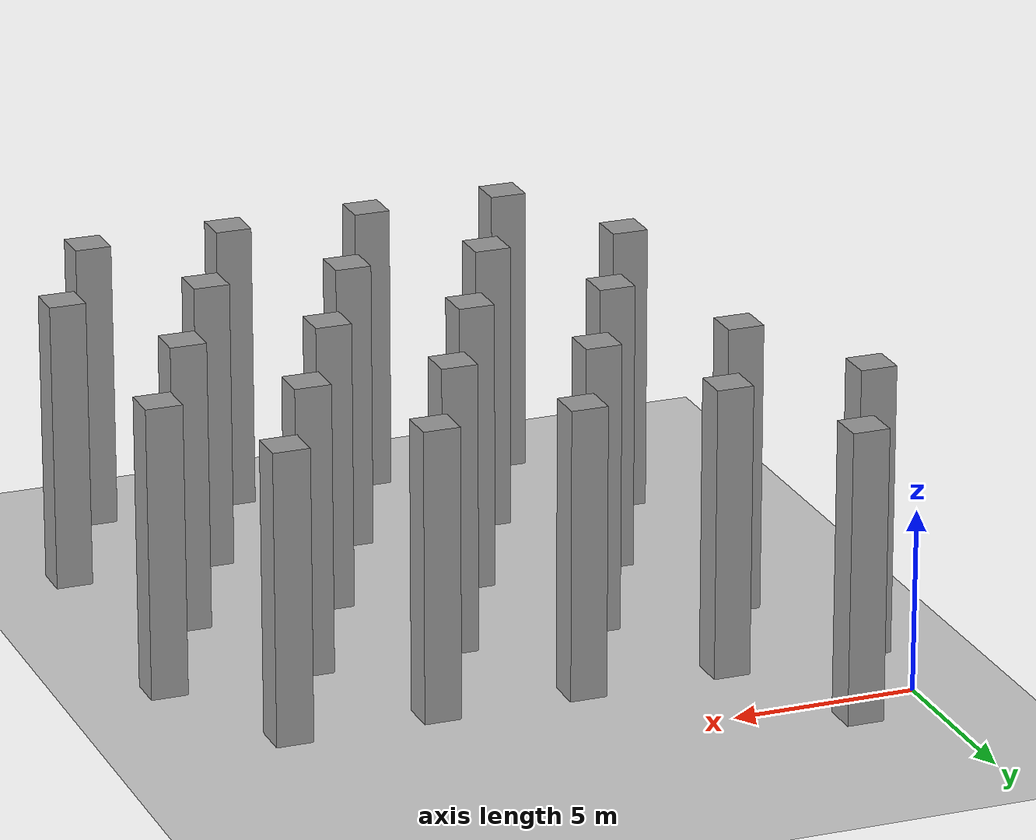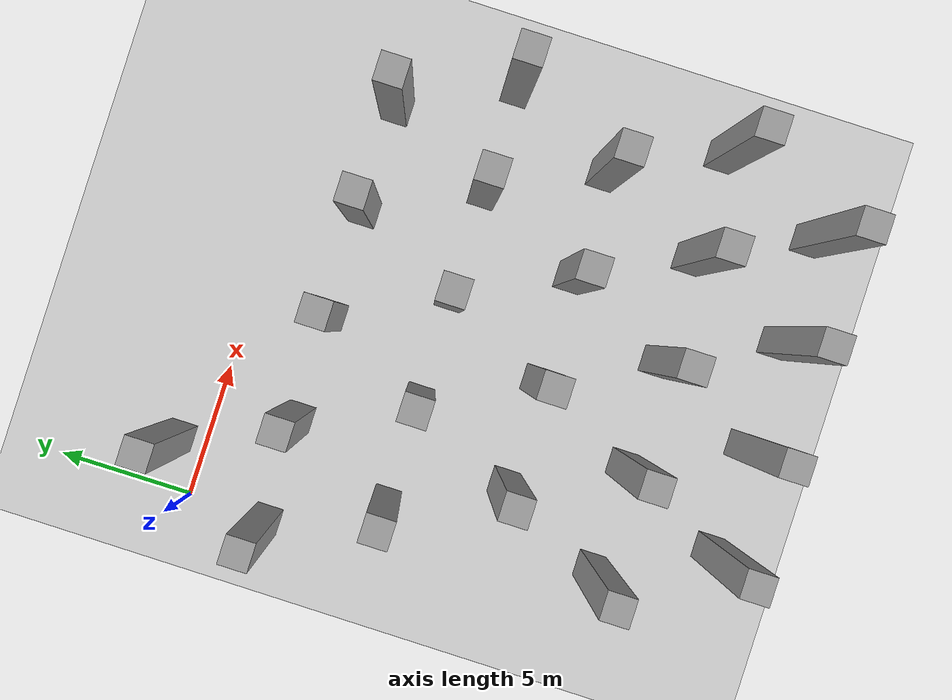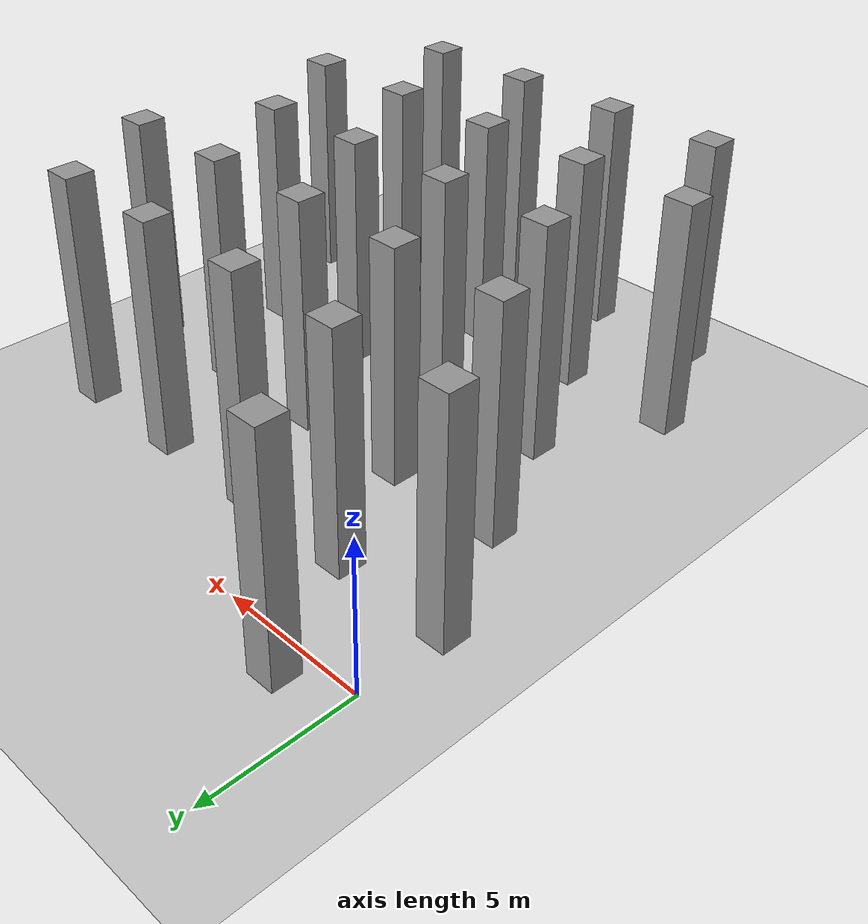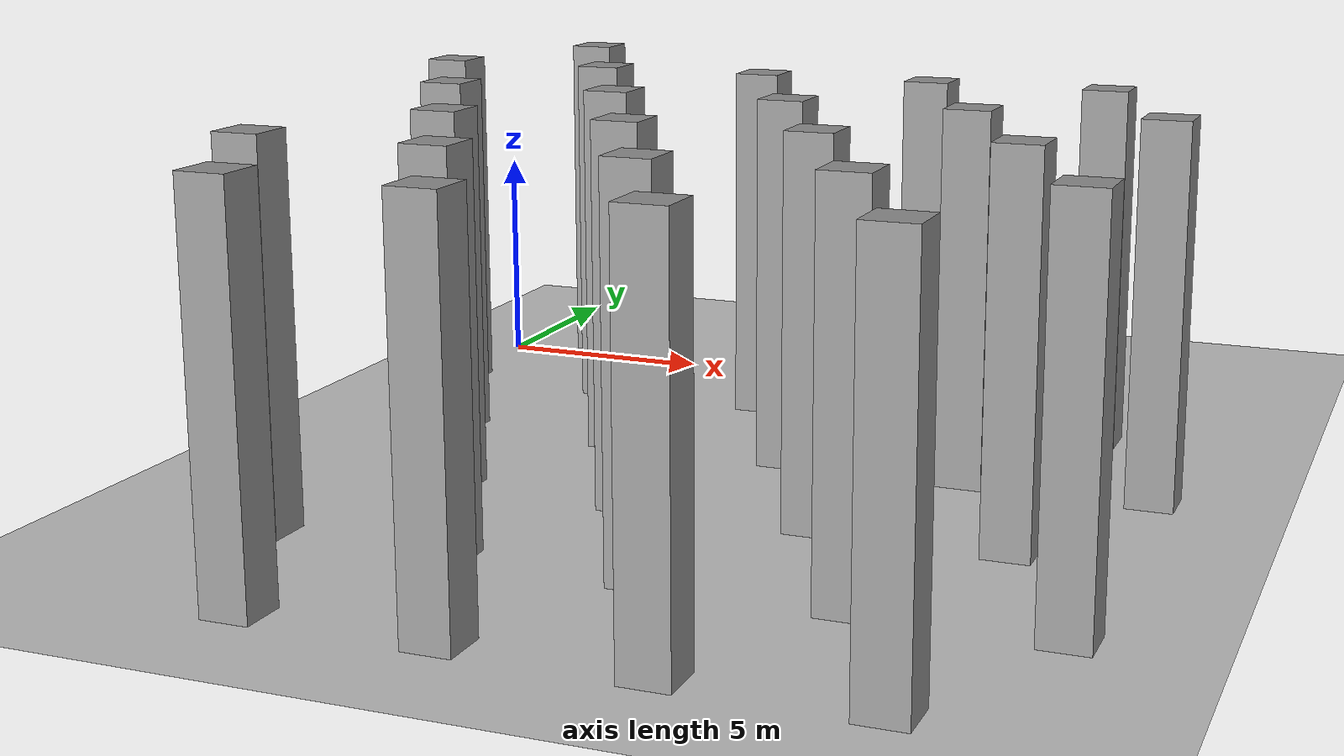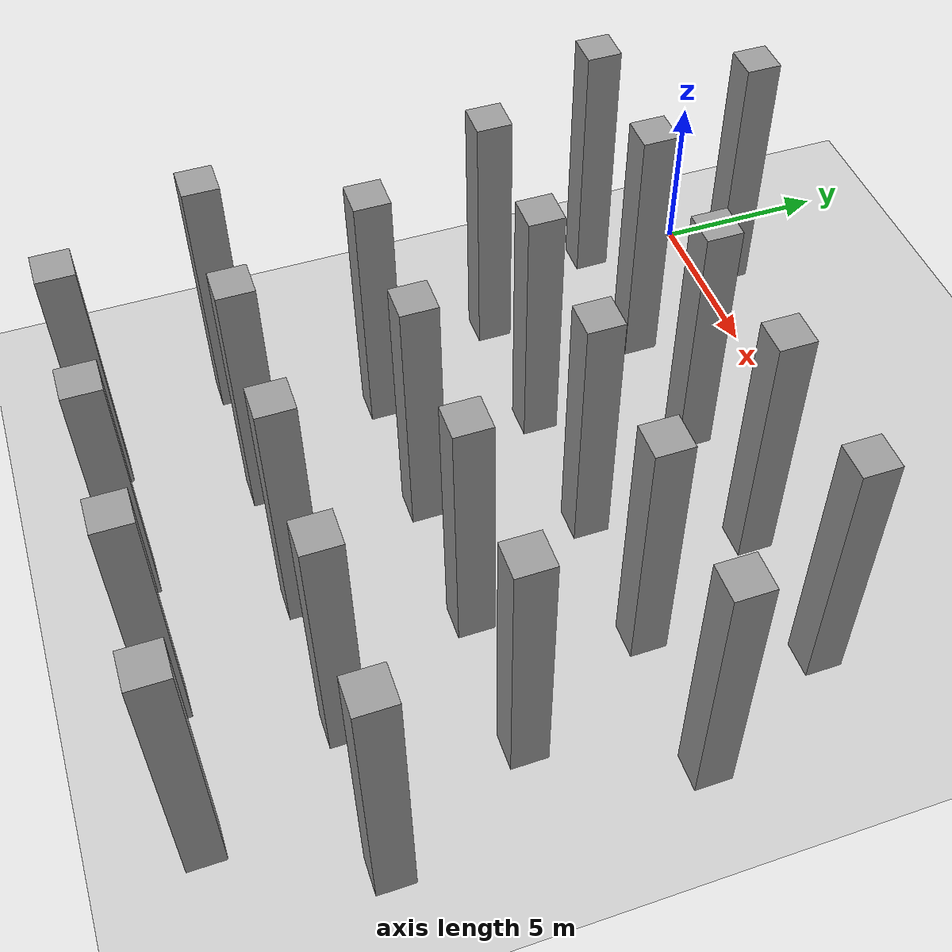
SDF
<sdf version="1.7">
 <world name="default">
  <model name="ground_plane">
   <static>1</static>
   <link name="link">
    <collision name="collision">
     <geometry><plane><normal>0 0 1</normal><size>100 100</size></plane></geometry>
     <surface>
      <contact><collide_bitmask>65535</collide_bitmask></contact>
      <friction><ode><mu>100</mu><mu2>50</mu2></ode></friction>
     </surface>
    </collision>
    <visual name="visual">
     <cast_shadows>0</cast_shadows>
     <geometry><plane><normal>0 0 1</normal><size>100 100</size></plane></geometry>
     <material>
      <script><uri>file://media/materials/scripts/gazebo.material</uri><name>Gazebo/Grey</name></script>
     </material>
    </visual>
   </link>
  </model>
  <model name="unit_box_static6">
   <link name="link">
    <inertial>
     <mass>1</mass>
     <inertia>
      <ixx>0.166667</ixx>
      <ixy>0</ixy>
      <ixz>0</ixz>
      <iyy>0.166667</iyy>
      <iyz>0</iyz>
      <izz>0.166667</izz>
     </inertia>
    </inertial>
    <visual name="visual">
     <geometry><box><size>1 1 8</size></box></geometry>
     <material>
      <script><name>Gazebo/Grey</name><uri>file://media/materials/scripts/gazebo.material</uri></script>
      <shader type="pixel"/>
     </material>
    </visual>
    <collision name="collision">
     <geometry><box><size>1 1 8</size></box></geometry>
     <surface>
      <friction>
       <ode><mu>1</mu><mu2>1</mu2><fdir1>0 0 0</fdir1><slip1>0</slip1><slip2>0</slip2></ode>
       <torsional>
        <coefficient>1</coefficient>
        <patch_radius>0</patch_radius>
        <surface_radius>0</surface_radius>
        <use_patch_radius>1</use_patch_radius>
        <ode><slip>0</slip></ode>
       </torsional>
      </friction>
      <bounce><restitution_coefficient>0</restitution_coefficient><threshold>1e+06</threshold></bounce>
      <contact>
       <collide_without_contact>0</collide_without_contact>
       <collide_without_contact_bitmask>1</collide_without_contact_bitmask>
       <collide_bitmask>1</collide_bitmask>
       <ode>
        <soft_cfm>0</soft_cfm>
        <soft_erp>0.2</soft_erp>
        <kp>1e+13</kp>
        <kd>1</kd>
        <max_vel>0.01</max_vel>
        <min_depth>0</min_depth>
       </ode>
       <bullet>
        <split_impulse>1</split_impulse>
        <split_impulse_penetration_threshold>-0.01</split_impulse_penetration_threshold>
        <soft_cfm>0</soft_cfm>
        <soft_erp>0.2</soft_erp>
        <kp>1e+13</kp>
        <kd>1</kd>
       </bullet>
      </contact>
     </surface>
    </collision>
   </link>
   <static>1</static>
   <pose>4 -19 4 0 -0 0</pose>
  </model>
  <model name="unit_box_static7">
   <link name="link">
    <inertial>
     <mass>1</mass>
     <inertia>
      <ixx>0.166667</ixx>
      <ixy>0</ixy>
      <ixz>0</ixz>
      <iyy>0.166667</iyy>
      <iyz>0</iyz>
      <izz>0.166667</izz>
     </inertia>
    </inertial>
    <visual name="visual">
     <geometry><box><size>1 1 8</size></box></geometry>
     <material>
      <script><name>Gazebo/Grey</name><uri>file://media/materials/scripts/gazebo.material</uri></script>
      <shader type="pixel"/>
     </material>
    </visual>
    <collision name="collision">
     <geometry><box><size>1 1 8</size></box></geometry>
     <surface>
      <friction>
       <ode><mu>1</mu><mu2>1</mu2><fdir1>0 0 0</fdir1><slip1>0</slip1><slip2>0</slip2></ode>
       <torsional>
        <coefficient>1</coefficient>
        <patch_radius>0</patch_radius>
        <surface_radius>0</surface_radius>
        <use_patch_radius>1</use_patch_radius>
        <ode><slip>0</slip></ode>
       </torsional>
      </friction>
      <bounce><restitution_coefficient>0</restitution_coefficient><threshold>1e+06</threshold></bounce>
      <contact>
       <collide_without_contact>0</collide_without_contact>
       <collide_without_contact_bitmask>1</collide_without_contact_bitmask>
       <collide_bitmask>1</collide_bitmask>
       <ode>
        <soft_cfm>0</soft_cfm>
        <soft_erp>0.2</soft_erp>
        <kp>1e+13</kp>
        <kd>1</kd>
        <max_vel>0.01</max_vel>
        <min_depth>0</min_depth>
       </ode>
       <bullet>
        <split_impulse>1</split_impulse>
        <split_impulse_penetration_threshold>-0.01</split_impulse_penetration_threshold>
        <soft_cfm>0</soft_cfm>
        <soft_erp>0.2</soft_erp>
        <kp>1e+13</kp>
        <kd>1</kd>
       </bullet>
      </contact>
     </surface>
    </collision>
   </link>
   <static>1</static>
   <pose>8 -19 4 0 -0 0</pose>
  </model>
  <model name="unit_box_static8">
   <link name="link">
    <inertial>
     <mass>1</mass>
     <inertia>
      <ixx>0.166667</ixx>
      <ixy>0</ixy>
      <ixz>0</ixz>
      <iyy>0.166667</iyy>
      <iyz>0</iyz>
      <izz>0.166667</izz>
     </inertia>
    </inertial>
    <visual name="visual">
     <geometry><box><size>1 1 8</size></box></geometry>
     <material>
      <script><name>Gazebo/Grey</name><uri>file://media/materials/scripts/gazebo.material</uri></script>
      <shader type="pixel"/>
     </material>
    </visual>
    <collision name="collision">
     <geometry><box><size>1 1 8</size></box></geometry>
     <surface>
      <friction>
       <ode><mu>1</mu><mu2>1</mu2><fdir1>0 0 0</fdir1><slip1>0</slip1><slip2>0</slip2></ode>
       <torsional>
        <coefficient>1</coefficient>
        <patch_radius>0</patch_radius>
        <surface_radius>0</surface_radius>
        <use_patch_radius>1</use_patch_radius>
        <ode><slip>0</slip></ode>
       </torsional>
      </friction>
      <bounce><restitution_coefficient>0</restitution_coefficient><threshold>1e+06</threshold></bounce>
      <contact>
       <collide_without_contact>0</collide_without_contact>
       <collide_without_contact_bitmask>1</collide_without_contact_bitmask>
       <collide_bitmask>1</collide_bitmask>
       <ode>
        <soft_cfm>0</soft_cfm>
        <soft_erp>0.2</soft_erp>
        <kp>1e+13</kp>
        <kd>1</kd>
        <max_vel>0.01</max_vel>
        <min_depth>0</min_depth>
       </ode>
       <bullet>
        <split_impulse>1</split_impulse>
        <split_impulse_penetration_threshold>-0.01</split_impulse_penetration_threshold>
        <soft_cfm>0</soft_cfm>
        <soft_erp>0.2</soft_erp>
        <kp>1e+13</kp>
        <kd>1</kd>
       </bullet>
      </contact>
     </surface>
    </collision>
   </link>
   <static>1</static>
   <pose>12 -19 4 0 -0 0</pose>
  </model>
  <model name="unit_box_static9">
   <link name="link">
    <inertial>
     <mass>1</mass>
     <inertia>
      <ixx>0.166667</ixx>
      <ixy>0</ixy>
      <ixz>0</ixz>
      <iyy>0.166667</iyy>
      <iyz>0</iyz>
      <izz>0.166667</izz>
     </inertia>
    </inertial>
    <visual name="visual">
     <geometry><box><size>1 1 8</size></box></geometry>
     <material>
      <script><name>Gazebo/Grey</name><uri>file://media/materials/scripts/gazebo.material</uri></script>
      <shader type="pixel"/>
     </material>
    </visual>
    <collision name="collision">
     <geometry><box><size>1 1 8</size></box></geometry>
     <surface>
      <friction>
       <ode><mu>1</mu><mu2>1</mu2><fdir1>0 0 0</fdir1><slip1>0</slip1><slip2>0</slip2></ode>
       <torsional>
        <coefficient>1</coefficient>
        <patch_radius>0</patch_radius>
        <surface_radius>0</surface_radius>
        <use_patch_radius>1</use_patch_radius>
        <ode><slip>0</slip></ode>
       </torsional>
      </friction>
      <bounce><restitution_coefficient>0</restitution_coefficient><threshold>1e+06</threshold></bounce>
      <contact>
       <collide_without_contact>0</collide_without_contact>
       <collide_without_contact_bitmask>1</collide_without_contact_bitmask>
       <collide_bitmask>1</collide_bitmask>
       <ode>
        <soft_cfm>0</soft_cfm>
        <soft_erp>0.2</soft_erp>
        <kp>1e+13</kp>
        <kd>1</kd>
        <max_vel>0.01</max_vel>
        <min_depth>0</min_depth>
       </ode>
       <bullet>
        <split_impulse>1</split_impulse>
        <split_impulse_penetration_threshold>-0.01</split_impulse_penetration_threshold>
        <soft_cfm>0</soft_cfm>
        <soft_erp>0.2</soft_erp>
        <kp>1e+13</kp>
        <kd>1</kd>
       </bullet>
      </contact>
     </surface>
    </collision>
   </link>
   <static>1</static>
   <pose>16 -19 4 0 -0 0</pose>
  </model>
  <model name="unit_box_static15">
   <link name="link">
    <inertial>
     <mass>1</mass>
     <inertia>
      <ixx>0.166667</ixx>
      <ixy>0</ixy>
      <ixz>0</ixz>
      <iyy>0.166667</iyy>
      <iyz>0</iyz>
      <izz>0.166667</izz>
     </inertia>
    </inertial>
    <visual name="visual">
     <geometry><box><size>1 1 8</size></box></geometry>
     <material>
      <script><name>Gazebo/Grey</name><uri>file://media/materials/scripts/gazebo.material</uri></script>
      <shader type="pixel"/>
     </material>
    </visual>
    <collision name="collision">
     <geometry><box><size>1 1 8</size></box></geometry>
     <surface>
      <friction>
       <ode><mu>1</mu><mu2>1</mu2><fdir1>0 0 0</fdir1><slip1>0</slip1><slip2>0</slip2></ode>
       <torsional>
        <coefficient>1</coefficient>
        <patch_radius>0</patch_radius>
        <surface_radius>0</surface_radius>
        <use_patch_radius>1</use_patch_radius>
        <ode><slip>0</slip></ode>
       </torsional>
      </friction>
      <bounce><restitution_coefficient>0</restitution_coefficient><threshold>1e+06</threshold></bounce>
      <contact>
       <collide_without_contact>0</collide_without_contact>
       <collide_without_contact_bitmask>1</collide_without_contact_bitmask>
       <collide_bitmask>1</collide_bitmask>
       <ode>
        <soft_cfm>0</soft_cfm>
        <soft_erp>0.2</soft_erp>
        <kp>1e+13</kp>
        <kd>1</kd>
        <max_vel>0.01</max_vel>
        <min_depth>0</min_depth>
       </ode>
       <bullet>
        <split_impulse>1</split_impulse>
        <split_impulse_penetration_threshold>-0.01</split_impulse_penetration_threshold>
        <soft_cfm>0</soft_cfm>
        <soft_erp>0.2</soft_erp>
        <kp>1e+13</kp>
        <kd>1</kd>
       </bullet>
      </contact>
     </surface>
    </collision>
   </link>
   <static>1</static>
   <pose>2 -15 4 0 -0 0</pose>
  </model>
  <model name="unit_box_static16">
   <link name="link">
    <inertial>
     <mass>1</mass>
     <inertia>
      <ixx>0.166667</ixx>
      <ixy>0</ixy>
      <ixz>0</ixz>
      <iyy>0.166667</iyy>
      <iyz>0</iyz>
      <izz>0.166667</izz>
     </inertia>
    </inertial>
    <visual name="visual">
     <geometry><box><size>1 1 8</size></box></geometry>
     <material>
      <script><name>Gazebo/Grey</name><uri>file://media/materials/scripts/gazebo.material</uri></script>
      <shader type="pixel"/>
     </material>
    </visual>
    <collision name="collision">
     <geometry><box><size>1 1 8</size></box></geometry>
     <surface>
      <friction>
       <ode><mu>1</mu><mu2>1</mu2><fdir1>0 0 0</fdir1><slip1>0</slip1><slip2>0</slip2></ode>
       <torsional>
        <coefficient>1</coefficient>
        <patch_radius>0</patch_radius>
        <surface_radius>0</surface_radius>
        <use_patch_radius>1</use_patch_radius>
        <ode><slip>0</slip></ode>
       </torsional>
      </friction>
      <bounce><restitution_coefficient>0</restitution_coefficient><threshold>1e+06</threshold></bounce>
      <contact>
       <collide_without_contact>0</collide_without_contact>
       <collide_without_contact_bitmask>1</collide_without_contact_bitmask>
       <collide_bitmask>1</collide_bitmask>
       <ode>
        <soft_cfm>0</soft_cfm>
        <soft_erp>0.2</soft_erp>
        <kp>1e+13</kp>
        <kd>1</kd>
        <max_vel>0.01</max_vel>
        <min_depth>0</min_depth>
       </ode>
       <bullet>
        <split_impulse>1</split_impulse>
        <split_impulse_penetration_threshold>-0.01</split_impulse_penetration_threshold>
        <soft_cfm>0</soft_cfm>
        <soft_erp>0.2</soft_erp>
        <kp>1e+13</kp>
        <kd>1</kd>
       </bullet>
      </contact>
     </surface>
    </collision>
   </link>
   <static>1</static>
   <pose>6 -15 4 0 -0 0</pose>
  </model>
  <model name="unit_box_static17">
   <link name="link">
    <inertial>
     <mass>1</mass>
     <inertia>
      <ixx>0.166667</ixx>
      <ixy>0</ixy>
      <ixz>0</ixz>
      <iyy>0.166667</iyy>
      <iyz>0</iyz>
      <izz>0.166667</izz>
     </inertia>
    </inertial>
    <visual name="visual">
     <geometry><box><size>1 1 8</size></box></geometry>
     <material>
      <script><name>Gazebo/Grey</name><uri>file://media/materials/scripts/gazebo.material</uri></script>
      <shader type="pixel"/>
     </material>
    </visual>
    <collision name="collision">
     <geometry><box><size>1 1 8</size></box></geometry>
     <surface>
      <friction>
       <ode><mu>1</mu><mu2>1</mu2><fdir1>0 0 0</fdir1><slip1>0</slip1><slip2>0</slip2></ode>
       <torsional>
        <coefficient>1</coefficient>
        <patch_radius>0</patch_radius>
        <surface_radius>0</surface_radius>
        <use_patch_radius>1</use_patch_radius>
        <ode><slip>0</slip></ode>
       </torsional>
      </friction>
      <bounce><restitution_coefficient>0</restitution_coefficient><threshold>1e+06</threshold></bounce>
      <contact>
       <collide_without_contact>0</collide_without_contact>
       <collide_without_contact_bitmask>1</collide_without_contact_bitmask>
       <collide_bitmask>1</collide_bitmask>
       <ode>
        <soft_cfm>0</soft_cfm>
        <soft_erp>0.2</soft_erp>
        <kp>1e+13</kp>
        <kd>1</kd>
        <max_vel>0.01</max_vel>
        <min_depth>0</min_depth>
       </ode>
       <bullet>
        <split_impulse>1</split_impulse>
        <split_impulse_penetration_threshold>-0.01</split_impulse_penetration_threshold>
        <soft_cfm>0</soft_cfm>
        <soft_erp>0.2</soft_erp>
        <kp>1e+13</kp>
        <kd>1</kd>
       </bullet>
      </contact>
     </surface>
    </collision>
   </link>
   <static>1</static>
   <pose>10 -15 4 0 -0 0</pose>
  </model>
  <model name="unit_box_static18">
   <link name="link">
    <inertial>
     <mass>1</mass>
     <inertia>
      <ixx>0.166667</ixx>
      <ixy>0</ixy>
      <ixz>0</ixz>
      <iyy>0.166667</iyy>
      <iyz>0</iyz>
      <izz>0.166667</izz>
     </inertia>
    </inertial>
    <visual name="visual">
     <geometry><box><size>1 1 8</size></box></geometry>
     <material>
      <script><name>Gazebo/Grey</name><uri>file://media/materials/scripts/gazebo.material</uri></script>
      <shader type="pixel"/>
     </material>
    </visual>
    <collision name="collision">
     <geometry><box><size>1 1 8</size></box></geometry>
     <surface>
      <friction>
       <ode><mu>1</mu><mu2>1</mu2><fdir1>0 0 0</fdir1><slip1>0</slip1><slip2>0</slip2></ode>
       <torsional>
        <coefficient>1</coefficient>
        <patch_radius>0</patch_radius>
        <surface_radius>0</surface_radius>
        <use_patch_radius>1</use_patch_radius>
        <ode><slip>0</slip></ode>
       </torsional>
      </friction>
      <bounce><restitution_coefficient>0</restitution_coefficient><threshold>1e+06</threshold></bounce>
      <contact>
       <collide_without_contact>0</collide_without_contact>
       <collide_without_contact_bitmask>1</collide_without_contact_bitmask>
       <collide_bitmask>1</collide_bitmask>
       <ode>
        <soft_cfm>0</soft_cfm>
        <soft_erp>0.2</soft_erp>
        <kp>1e+13</kp>
        <kd>1</kd>
        <max_vel>0.01</max_vel>
        <min_depth>0</min_depth>
       </ode>
       <bullet>
        <split_impulse>1</split_impulse>
        <split_impulse_penetration_threshold>-0.01</split_impulse_penetration_threshold>
        <soft_cfm>0</soft_cfm>
        <soft_erp>0.2</soft_erp>
        <kp>1e+13</kp>
        <kd>1</kd>
       </bullet>
      </contact>
     </surface>
    </collision>
   </link>
   <static>1</static>
   <pose>14 -15 4 0 -0 0</pose>
  </model>
  <model name="unit_box_static19">
   <link name="link">
    <inertial>
     <mass>1</mass>
     <inertia>
      <ixx>0.166667</ixx>
      <ixy>0</ixy>
      <ixz>0</ixz>
      <iyy>0.166667</iyy>
      <iyz>0</iyz>
      <izz>0.166667</izz>
     </inertia>
    </inertial>
    <visual name="visual">
     <geometry><box><size>1 1 8</size></box></geometry>
     <material>
      <script><name>Gazebo/Grey</name><uri>file://media/materials/scripts/gazebo.material</uri></script>
      <shader type="pixel"/>
     </material>
    </visual>
    <collision name="collision">
     <geometry><box><size>1 1 8</size></box></geometry>
     <surface>
      <friction>
       <ode><mu>1</mu><mu2>1</mu2><fdir1>0 0 0</fdir1><slip1>0</slip1><slip2>0</slip2></ode>
       <torsional>
        <coefficient>1</coefficient>
        <patch_radius>0</patch_radius>
        <surface_radius>0</surface_radius>
        <use_patch_radius>1</use_patch_radius>
        <ode><slip>0</slip></ode>
       </torsional>
      </friction>
      <bounce><restitution_coefficient>0</restitution_coefficient><threshold>1e+06</threshold></bounce>
      <contact>
       <collide_without_contact>0</collide_without_contact>
       <collide_without_contact_bitmask>1</collide_without_contact_bitmask>
       <collide_bitmask>1</collide_bitmask>
       <ode>
        <soft_cfm>0</soft_cfm>
        <soft_erp>0.2</soft_erp>
        <kp>1e+13</kp>
        <kd>1</kd>
        <max_vel>0.01</max_vel>
        <min_depth>0</min_depth>
       </ode>
       <bullet>
        <split_impulse>1</split_impulse>
        <split_impulse_penetration_threshold>-0.01</split_impulse_penetration_threshold>
        <soft_cfm>0</soft_cfm>
        <soft_erp>0.2</soft_erp>
        <kp>1e+13</kp>
        <kd>1</kd>
       </bullet>
      </contact>
     </surface>
    </collision>
   </link>
   <static>1</static>
   <pose>18 -15 4 0 -0 0</pose>
  </model>
  <model name="unit_box_static25">
   <link name="link">
    <inertial>
     <mass>1</mass>
     <inertia>
      <ixx>0.166667</ixx>
      <ixy>0</ixy>
      <ixz>0</ixz>
      <iyy>0.166667</iyy>
      <iyz>0</iyz>
      <izz>0.166667</izz>
     </inertia>
    </inertial>
    <visual name="visual">
     <geometry><box><size>1 1 8</size></box></geometry>
     <material>
      <script><name>Gazebo/Grey</name><uri>file://media/materials/scripts/gazebo.material</uri></script>
      <shader type="pixel"/>
     </material>
    </visual>
    <collision name="collision">
     <geometry><box><size>1 1 8</size></box></geometry>
     <surface>
      <friction>
       <ode><mu>1</mu><mu2>1</mu2><fdir1>0 0 0</fdir1><slip1>0</slip1><slip2>0</slip2></ode>
       <torsional>
        <coefficient>1</coefficient>
        <patch_radius>0</patch_radius>
        <surface_radius>0</surface_radius>
        <use_patch_radius>1</use_patch_radius>
        <ode><slip>0</slip></ode>
       </torsional>
      </friction>
      <bounce><restitution_coefficient>0</restitution_coefficient><threshold>1e+06</threshold></bounce>
      <contact>
       <collide_without_contact>0</collide_without_contact>
       <collide_without_contact_bitmask>1</collide_without_contact_bitmask>
       <collide_bitmask>1</collide_bitmask>
       <ode>
        <soft_cfm>0</soft_cfm>
        <soft_erp>0.2</soft_erp>
        <kp>1e+13</kp>
        <kd>1</kd>
        <max_vel>0.01</max_vel>
        <min_depth>0</min_depth>
       </ode>
       <bullet>
        <split_impulse>1</split_impulse>
        <split_impulse_penetration_threshold>-0.01</split_impulse_penetration_threshold>
        <soft_cfm>0</soft_cfm>
        <soft_erp>0.2</soft_erp>
        <kp>1e+13</kp>
        <kd>1</kd>
       </bullet>
      </contact>
     </surface>
    </collision>
   </link>
   <static>1</static>
   <pose>4 -11 4 0 -0 0</pose>
  </model>
  <model name="unit_box_static26">
   <link name="link">
    <inertial>
     <mass>1</mass>
     <inertia>
      <ixx>0.166667</ixx>
      <ixy>0</ixy>
      <ixz>0</ixz>
      <iyy>0.166667</iyy>
      <iyz>0</iyz>
      <izz>0.166667</izz>
     </inertia>
    </inertial>
    <visual name="visual">
     <geometry><box><size>1 1 8</size></box></geometry>
     <material>
      <script><name>Gazebo/Grey</name><uri>file://media/materials/scripts/gazebo.material</uri></script>
      <shader type="pixel"/>
     </material>
    </visual>
    <collision name="collision">
     <geometry><box><size>1 1 8</size></box></geometry>
     <surface>
      <friction>
       <ode><mu>1</mu><mu2>1</mu2><fdir1>0 0 0</fdir1><slip1>0</slip1><slip2>0</slip2></ode>
       <torsional>
        <coefficient>1</coefficient>
        <patch_radius>0</patch_radius>
        <surface_radius>0</surface_radius>
        <use_patch_radius>1</use_patch_radius>
        <ode><slip>0</slip></ode>
       </torsional>
      </friction>
      <bounce><restitution_coefficient>0</restitution_coefficient><threshold>1e+06</threshold></bounce>
      <contact>
       <collide_without_contact>0</collide_without_contact>
       <collide_without_contact_bitmask>1</collide_without_contact_bitmask>
       <collide_bitmask>1</collide_bitmask>
       <ode>
        <soft_cfm>0</soft_cfm>
        <soft_erp>0.2</soft_erp>
        <kp>1e+13</kp>
        <kd>1</kd>
        <max_vel>0.01</max_vel>
        <min_depth>0</min_depth>
       </ode>
       <bullet>
        <split_impulse>1</split_impulse>
        <split_impulse_penetration_threshold>-0.01</split_impulse_penetration_threshold>
        <soft_cfm>0</soft_cfm>
        <soft_erp>0.2</soft_erp>
        <kp>1e+13</kp>
        <kd>1</kd>
       </bullet>
      </contact>
     </surface>
    </collision>
   </link>
   <static>1</static>
   <pose>8 -11 4 0 -0 0</pose>
  </model>
  <model name="unit_box_static27">
   <link name="link">
    <inertial>
     <mass>1</mass>
     <inertia>
      <ixx>0.166667</ixx>
      <ixy>0</ixy>
      <ixz>0</ixz>
      <iyy>0.166667</iyy>
      <iyz>0</iyz>
      <izz>0.166667</izz>
     </inertia>
    </inertial>
    <visual name="visual">
     <geometry><box><size>1 1 8</size></box></geometry>
     <material>
      <script><name>Gazebo/Grey</name><uri>file://media/materials/scripts/gazebo.material</uri></script>
      <shader type="pixel"/>
     </material>
    </visual>
    <collision name="collision">
     <geometry><box><size>1 1 8</size></box></geometry>
     <surface>
      <friction>
       <ode><mu>1</mu><mu2>1</mu2><fdir1>0 0 0</fdir1><slip1>0</slip1><slip2>0</slip2></ode>
       <torsional>
        <coefficient>1</coefficient>
        <patch_radius>0</patch_radius>
        <surface_radius>0</surface_radius>
        <use_patch_radius>1</use_patch_radius>
        <ode><slip>0</slip></ode>
       </torsional>
      </friction>
      <bounce><restitution_coefficient>0</restitution_coefficient><threshold>1e+06</threshold></bounce>
      <contact>
       <collide_without_contact>0</collide_without_contact>
       <collide_without_contact_bitmask>1</collide_without_contact_bitmask>
       <collide_bitmask>1</collide_bitmask>
       <ode>
        <soft_cfm>0</soft_cfm>
        <soft_erp>0.2</soft_erp>
        <kp>1e+13</kp>
        <kd>1</kd>
        <max_vel>0.01</max_vel>
        <min_depth>0</min_depth>
       </ode>
       <bullet>
        <split_impulse>1</split_impulse>
        <split_impulse_penetration_threshold>-0.01</split_impulse_penetration_threshold>
        <soft_cfm>0</soft_cfm>
        <soft_erp>0.2</soft_erp>
        <kp>1e+13</kp>
        <kd>1</kd>
       </bullet>
      </contact>
     </surface>
    </collision>
   </link>
   <static>1</static>
   <pose>12 -11 4 0 -0 0</pose>
  </model>
  <model name="unit_box_static28">
   <link name="link">
    <inertial>
     <mass>1</mass>
     <inertia>
      <ixx>0.166667</ixx>
      <ixy>0</ixy>
      <ixz>0</ixz>
      <iyy>0.166667</iyy>
      <iyz>0</iyz>
      <izz>0.166667</izz>
     </inertia>
    </inertial>
    <visual name="visual">
     <geometry><box><size>1 1 8</size></box></geometry>
     <material>
      <script><name>Gazebo/Grey</name><uri>file://media/materials/scripts/gazebo.material</uri></script>
      <shader type="pixel"/>
     </material>
    </visual>
    <collision name="collision">
     <geometry><box><size>1 1 8</size></box></geometry>
     <surface>
      <friction>
       <ode><mu>1</mu><mu2>1</mu2><fdir1>0 0 0</fdir1><slip1>0</slip1><slip2>0</slip2></ode>
       <torsional>
        <coefficient>1</coefficient>
        <patch_radius>0</patch_radius>
        <surface_radius>0</surface_radius>
        <use_patch_radius>1</use_patch_radius>
        <ode><slip>0</slip></ode>
       </torsional>
      </friction>
      <bounce><restitution_coefficient>0</restitution_coefficient><threshold>1e+06</threshold></bounce>
      <contact>
       <collide_without_contact>0</collide_without_contact>
       <collide_without_contact_bitmask>1</collide_without_contact_bitmask>
       <collide_bitmask>1</collide_bitmask>
       <ode>
        <soft_cfm>0</soft_cfm>
        <soft_erp>0.2</soft_erp>
        <kp>1e+13</kp>
        <kd>1</kd>
        <max_vel>0.01</max_vel>
        <min_depth>0</min_depth>
       </ode>
       <bullet>
        <split_impulse>1</split_impulse>
        <split_impulse_penetration_threshold>-0.01</split_impulse_penetration_threshold>
        <soft_cfm>0</soft_cfm>
        <soft_erp>0.2</soft_erp>
        <kp>1e+13</kp>
        <kd>1</kd>
       </bullet>
      </contact>
     </surface>
    </collision>
   </link>
   <static>1</static>
   <pose>16 -11 4 0 -0 0</pose>
  </model>
  <model name="unit_box_static34">
   <link name="link">
    <inertial>
     <mass>1</mass>
     <inertia>
      <ixx>0.166667</ixx>
      <ixy>0</ixy>
      <ixz>0</ixz>
      <iyy>0.166667</iyy>
      <iyz>0</iyz>
      <izz>0.166667</izz>
     </inertia>
    </inertial>
    <visual name="visual">
     <geometry><box><size>1 1 8</size></box></geometry>
     <material>
      <script><name>Gazebo/Grey</name><uri>file://media/materials/scripts/gazebo.material</uri></script>
      <shader type="pixel"/>
     </material>
    </visual>
    <collision name="collision">
     <geometry><box><size>1 1 8</size></box></geometry>
     <surface>
      <friction>
       <ode><mu>1</mu><mu2>1</mu2><fdir1>0 0 0</fdir1><slip1>0</slip1><slip2>0</slip2></ode>
       <torsional>
        <coefficient>1</coefficient>
        <patch_radius>0</patch_radius>
        <surface_radius>0</surface_radius>
        <use_patch_radius>1</use_patch_radius>
        <ode><slip>0</slip></ode>
       </torsional>
      </friction>
      <bounce><restitution_coefficient>0</restitution_coefficient><threshold>1e+06</threshold></bounce>
      <contact>
       <collide_without_contact>0</collide_without_contact>
       <collide_without_contact_bitmask>1</collide_without_contact_bitmask>
       <collide_bitmask>1</collide_bitmask>
       <ode>
        <soft_cfm>0</soft_cfm>
        <soft_erp>0.2</soft_erp>
        <kp>1e+13</kp>
        <kd>1</kd>
        <max_vel>0.01</max_vel>
        <min_depth>0</min_depth>
       </ode>
       <bullet>
        <split_impulse>1</split_impulse>
        <split_impulse_penetration_threshold>-0.01</split_impulse_penetration_threshold>
        <soft_cfm>0</soft_cfm>
        <soft_erp>0.2</soft_erp>
        <kp>1e+13</kp>
        <kd>1</kd>
       </bullet>
      </contact>
     </surface>
    </collision>
   </link>
   <static>1</static>
   <pose>2 -7 4 0 -0 0</pose>
  </model>
  <model name="unit_box_static35">
   <link name="link">
    <inertial>
     <mass>1</mass>
     <inertia>
      <ixx>0.166667</ixx>
      <ixy>0</ixy>
      <ixz>0</ixz>
      <iyy>0.166667</iyy>
      <iyz>0</iyz>
      <izz>0.166667</izz>
     </inertia>
    </inertial>
    <visual name="visual">
     <geometry><box><size>1 1 8</size></box></geometry>
     <material>
      <script><name>Gazebo/Grey</name><uri>file://media/materials/scripts/gazebo.material</uri></script>
      <shader type="pixel"/>
     </material>
    </visual>
    <collision name="collision">
     <geometry><box><size>1 1 8</size></box></geometry>
     <surface>
      <friction>
       <ode><mu>1</mu><mu2>1</mu2><fdir1>0 0 0</fdir1><slip1>0</slip1><slip2>0</slip2></ode>
       <torsional>
        <coefficient>1</coefficient>
        <patch_radius>0</patch_radius>
        <surface_radius>0</surface_radius>
        <use_patch_radius>1</use_patch_radius>
        <ode><slip>0</slip></ode>
       </torsional>
      </friction>
      <bounce><restitution_coefficient>0</restitution_coefficient><threshold>1e+06</threshold></bounce>
      <contact>
       <collide_without_contact>0</collide_without_contact>
       <collide_without_contact_bitmask>1</collide_without_contact_bitmask>
       <collide_bitmask>1</collide_bitmask>
       <ode>
        <soft_cfm>0</soft_cfm>
        <soft_erp>0.2</soft_erp>
        <kp>1e+13</kp>
        <kd>1</kd>
        <max_vel>0.01</max_vel>
        <min_depth>0</min_depth>
       </ode>
       <bullet>
        <split_impulse>1</split_impulse>
        <split_impulse_penetration_threshold>-0.01</split_impulse_penetration_threshold>
        <soft_cfm>0</soft_cfm>
        <soft_erp>0.2</soft_erp>
        <kp>1e+13</kp>
        <kd>1</kd>
       </bullet>
      </contact>
     </surface>
    </collision>
   </link>
   <static>1</static>
   <pose>6 -7 4 0 -0 0</pose>
  </model>
  <model name="unit_box_static36">
   <link name="link">
    <inertial>
     <mass>1</mass>
     <inertia>
      <ixx>0.166667</ixx>
      <ixy>0</ixy>
      <ixz>0</ixz>
      <iyy>0.166667</iyy>
      <iyz>0</iyz>
      <izz>0.166667</izz>
     </inertia>
    </inertial>
    <visual name="visual">
     <geometry><box><size>1 1 8</size></box></geometry>
     <material>
      <script><name>Gazebo/Grey</name><uri>file://media/materials/scripts/gazebo.material</uri></script>
      <shader type="pixel"/>
     </material>
    </visual>
    <collision name="collision">
     <geometry><box><size>1 1 8</size></box></geometry>
     <surface>
      <friction>
       <ode><mu>1</mu><mu2>1</mu2><fdir1>0 0 0</fdir1><slip1>0</slip1><slip2>0</slip2></ode>
       <torsional>
        <coefficient>1</coefficient>
        <patch_radius>0</patch_radius>
        <surface_radius>0</surface_radius>
        <use_patch_radius>1</use_patch_radius>
        <ode><slip>0</slip></ode>
       </torsional>
      </friction>
      <bounce><restitution_coefficient>0</restitution_coefficient><threshold>1e+06</threshold></bounce>
      <contact>
       <collide_without_contact>0</collide_without_contact>
       <collide_without_contact_bitmask>1</collide_without_contact_bitmask>
       <collide_bitmask>1</collide_bitmask>
       <ode>
        <soft_cfm>0</soft_cfm>
        <soft_erp>0.2</soft_erp>
        <kp>1e+13</kp>
        <kd>1</kd>
        <max_vel>0.01</max_vel>
        <min_depth>0</min_depth>
       </ode>
       <bullet>
        <split_impulse>1</split_impulse>
        <split_impulse_penetration_threshold>-0.01</split_impulse_penetration_threshold>
        <soft_cfm>0</soft_cfm>
        <soft_erp>0.2</soft_erp>
        <kp>1e+13</kp>
        <kd>1</kd>
       </bullet>
      </contact>
     </surface>
    </collision>
   </link>
   <static>1</static>
   <pose>10 -7 4 0 -0 0</pose>
  </model>
  <model name="unit_box_static37">
   <link name="link">
    <inertial>
     <mass>1</mass>
     <inertia>
      <ixx>0.166667</ixx>
      <ixy>0</ixy>
      <ixz>0</ixz>
      <iyy>0.166667</iyy>
      <iyz>0</iyz>
      <izz>0.166667</izz>
     </inertia>
    </inertial>
    <visual name="visual">
     <geometry><box><size>1 1 8</size></box></geometry>
     <material>
      <script><name>Gazebo/Grey</name><uri>file://media/materials/scripts/gazebo.material</uri></script>
      <shader type="pixel"/>
     </material>
    </visual>
    <collision name="collision">
     <geometry><box><size>1 1 8</size></box></geometry>
     <surface>
      <friction>
       <ode><mu>1</mu><mu2>1</mu2><fdir1>0 0 0</fdir1><slip1>0</slip1><slip2>0</slip2></ode>
       <torsional>
        <coefficient>1</coefficient>
        <patch_radius>0</patch_radius>
        <surface_radius>0</surface_radius>
        <use_patch_radius>1</use_patch_radius>
        <ode><slip>0</slip></ode>
       </torsional>
      </friction>
      <bounce><restitution_coefficient>0</restitution_coefficient><threshold>1e+06</threshold></bounce>
      <contact>
       <collide_without_contact>0</collide_without_contact>
       <collide_without_contact_bitmask>1</collide_without_contact_bitmask>
       <collide_bitmask>1</collide_bitmask>
       <ode>
        <soft_cfm>0</soft_cfm>
        <soft_erp>0.2</soft_erp>
        <kp>1e+13</kp>
        <kd>1</kd>
        <max_vel>0.01</max_vel>
        <min_depth>0</min_depth>
       </ode>
       <bullet>
        <split_impulse>1</split_impulse>
        <split_impulse_penetration_threshold>-0.01</split_impulse_penetration_threshold>
        <soft_cfm>0</soft_cfm>
        <soft_erp>0.2</soft_erp>
        <kp>1e+13</kp>
        <kd>1</kd>
       </bullet>
      </contact>
     </surface>
    </collision>
   </link>
   <static>1</static>
   <pose>14 -7 4 0 -0 0</pose>
  </model>
  <model name="unit_box_static38">
   <link name="link">
    <inertial>
     <mass>1</mass>
     <inertia>
      <ixx>0.166667</ixx>
      <ixy>0</ixy>
      <ixz>0</ixz>
      <iyy>0.166667</iyy>
      <iyz>0</iyz>
      <izz>0.166667</izz>
     </inertia>
    </inertial>
    <visual name="visual">
     <geometry><box><size>1 1 8</size></box></geometry>
     <material>
      <script><name>Gazebo/Grey</name><uri>file://media/materials/scripts/gazebo.material</uri></script>
      <shader type="pixel"/>
     </material>
    </visual>
    <collision name="collision">
     <geometry><box><size>1 1 8</size></box></geometry>
     <surface>
      <friction>
       <ode><mu>1</mu><mu2>1</mu2><fdir1>0 0 0</fdir1><slip1>0</slip1><slip2>0</slip2></ode>
       <torsional>
        <coefficient>1</coefficient>
        <patch_radius>0</patch_radius>
        <surface_radius>0</surface_radius>
        <use_patch_radius>1</use_patch_radius>
        <ode><slip>0</slip></ode>
       </torsional>
      </friction>
      <bounce><restitution_coefficient>0</restitution_coefficient><threshold>1e+06</threshold></bounce>
      <contact>
       <collide_without_contact>0</collide_without_contact>
       <collide_without_contact_bitmask>1</collide_without_contact_bitmask>
       <collide_bitmask>1</collide_bitmask>
       <ode>
        <soft_cfm>0</soft_cfm>
        <soft_erp>0.2</soft_erp>
        <kp>1e+13</kp>
        <kd>1</kd>
        <max_vel>0.01</max_vel>
        <min_depth>0</min_depth>
       </ode>
       <bullet>
        <split_impulse>1</split_impulse>
        <split_impulse_penetration_threshold>-0.01</split_impulse_penetration_threshold>
        <soft_cfm>0</soft_cfm>
        <soft_erp>0.2</soft_erp>
        <kp>1e+13</kp>
        <kd>1</kd>
       </bullet>
      </contact>
     </surface>
    </collision>
   </link>
   <static>1</static>
   <pose>18 -7 4 0 -0 0</pose>
  </model>
  <model name="unit_box_static43">
   <link name="link">
    <inertial>
     <mass>1</mass>
     <inertia>
      <ixx>0.166667</ixx>
      <ixy>0</ixy>
      <ixz>0</ixz>
      <iyy>0.166667</iyy>
      <iyz>0</iyz>
      <izz>0.166667</izz>
     </inertia>
    </inertial>
    <visual name="visual">
     <geometry><box><size>1 1 8</size></box></geometry>
     <material>
      <script><name>Gazebo/Grey</name><uri>file://media/materials/scripts/gazebo.material</uri></script>
      <shader type="pixel"/>
     </material>
    </visual>
    <collision name="collision">
     <geometry><box><size>1 1 8</size></box></geometry>
     <surface>
      <friction>
       <ode><mu>1</mu><mu2>1</mu2><fdir1>0 0 0</fdir1><slip1>0</slip1><slip2>0</slip2></ode>
       <torsional>
        <coefficient>1</coefficient>
        <patch_radius>0</patch_radius>
        <surface_radius>0</surface_radius>
        <use_patch_radius>1</use_patch_radius>
        <ode><slip>0</slip></ode>
       </torsional>
      </friction>
      <bounce><restitution_coefficient>0</restitution_coefficient><threshold>1e+06</threshold></bounce>
      <contact>
       <collide_without_contact>0</collide_without_contact>
       <collide_without_contact_bitmask>1</collide_without_contact_bitmask>
       <collide_bitmask>1</collide_bitmask>
       <ode>
        <soft_cfm>0</soft_cfm>
        <soft_erp>0.2</soft_erp>
        <kp>1e+13</kp>
        <kd>1</kd>
        <max_vel>0.01</max_vel>
        <min_depth>0</min_depth>
       </ode>
       <bullet>
        <split_impulse>1</split_impulse>
        <split_impulse_penetration_threshold>-0.01</split_impulse_penetration_threshold>
        <soft_cfm>0</soft_cfm>
        <soft_erp>0.2</soft_erp>
        <kp>1e+13</kp>
        <kd>1</kd>
       </bullet>
      </contact>
     </surface>
    </collision>
   </link>
   <static>1</static>
   <pose>0 -3 4 0 -0 0</pose>
  </model>
  <model name="unit_box_static44">
   <link name="link">
    <inertial>
     <mass>1</mass>
     <inertia>
      <ixx>0.166667</ixx>
      <ixy>0</ixy>
      <ixz>0</ixz>
      <iyy>0.166667</iyy>
      <iyz>0</iyz>
      <izz>0.166667</izz>
     </inertia>
    </inertial>
    <visual name="visual">
     <geometry><box><size>1 1 8</size></box></geometry>
     <material>
      <script><name>Gazebo/Grey</name><uri>file://media/materials/scripts/gazebo.material</uri></script>
      <shader type="pixel"/>
     </material>
    </visual>
    <collision name="collision">
     <geometry><box><size>1 1 8</size></box></geometry>
     <surface>
      <friction>
       <ode><mu>1</mu><mu2>1</mu2><fdir1>0 0 0</fdir1><slip1>0</slip1><slip2>0</slip2></ode>
       <torsional>
        <coefficient>1</coefficient>
        <patch_radius>0</patch_radius>
        <surface_radius>0</surface_radius>
        <use_patch_radius>1</use_patch_radius>
        <ode><slip>0</slip></ode>
       </torsional>
      </friction>
      <bounce><restitution_coefficient>0</restitution_coefficient><threshold>1e+06</threshold></bounce>
      <contact>
       <collide_without_contact>0</collide_without_contact>
       <collide_without_contact_bitmask>1</collide_without_contact_bitmask>
       <collide_bitmask>1</collide_bitmask>
       <ode>
        <soft_cfm>0</soft_cfm>
        <soft_erp>0.2</soft_erp>
        <kp>1e+13</kp>
        <kd>1</kd>
        <max_vel>0.01</max_vel>
        <min_depth>0</min_depth>
       </ode>
       <bullet>
        <split_impulse>1</split_impulse>
        <split_impulse_penetration_threshold>-0.01</split_impulse_penetration_threshold>
        <soft_cfm>0</soft_cfm>
        <soft_erp>0.2</soft_erp>
        <kp>1e+13</kp>
        <kd>1</kd>
       </bullet>
      </contact>
     </surface>
    </collision>
   </link>
   <static>1</static>
   <pose>4 -3 4 0 -0 0</pose>
  </model>
  <model name="unit_box_static45">
   <link name="link">
    <inertial>
     <mass>1</mass>
     <inertia>
      <ixx>0.166667</ixx>
      <ixy>0</ixy>
      <ixz>0</ixz>
      <iyy>0.166667</iyy>
      <iyz>0</iyz>
      <izz>0.166667</izz>
     </inertia>
    </inertial>
    <visual name="visual">
     <geometry><box><size>1 1 8</size></box></geometry>
     <material>
      <script><name>Gazebo/Grey</name><uri>file://media/materials/scripts/gazebo.material</uri></script>
      <shader type="pixel"/>
     </material>
    </visual>
    <collision name="collision">
     <geometry><box><size>1 1 8</size></box></geometry>
     <surface>
      <friction>
       <ode><mu>1</mu><mu2>1</mu2><fdir1>0 0 0</fdir1><slip1>0</slip1><slip2>0</slip2></ode>
       <torsional>
        <coefficient>1</coefficient>
        <patch_radius>0</patch_radius>
        <surface_radius>0</surface_radius>
        <use_patch_radius>1</use_patch_radius>
        <ode><slip>0</slip></ode>
       </torsional>
      </friction>
      <bounce><restitution_coefficient>0</restitution_coefficient><threshold>1e+06</threshold></bounce>
      <contact>
       <collide_without_contact>0</collide_without_contact>
       <collide_without_contact_bitmask>1</collide_without_contact_bitmask>
       <collide_bitmask>1</collide_bitmask>
       <ode>
        <soft_cfm>0</soft_cfm>
        <soft_erp>0.2</soft_erp>
        <kp>1e+13</kp>
        <kd>1</kd>
        <max_vel>0.01</max_vel>
        <min_depth>0</min_depth>
       </ode>
       <bullet>
        <split_impulse>1</split_impulse>
        <split_impulse_penetration_threshold>-0.01</split_impulse_penetration_threshold>
        <soft_cfm>0</soft_cfm>
        <soft_erp>0.2</soft_erp>
        <kp>1e+13</kp>
        <kd>1</kd>
       </bullet>
      </contact>
     </surface>
    </collision>
   </link>
   <static>1</static>
   <pose>8 -3 4 0 -0 0</pose>
  </model>
  <model name="unit_box_static46">
   <link name="link">
    <inertial>
     <mass>1</mass>
     <inertia>
      <ixx>0.166667</ixx>
      <ixy>0</ixy>
      <ixz>0</ixz>
      <iyy>0.166667</iyy>
      <iyz>0</iyz>
      <izz>0.166667</izz>
     </inertia>
    </inertial>
    <visual name="visual">
     <geometry><box><size>1 1 8</size></box></geometry>
     <material>
      <script><name>Gazebo/Grey</name><uri>file://media/materials/scripts/gazebo.material</uri></script>
      <shader type="pixel"/>
     </material>
    </visual>
    <collision name="collision">
     <geometry><box><size>1 1 8</size></box></geometry>
     <surface>
      <friction>
       <ode><mu>1</mu><mu2>1</mu2><fdir1>0 0 0</fdir1><slip1>0</slip1><slip2>0</slip2></ode>
       <torsional>
        <coefficient>1</coefficient>
        <patch_radius>0</patch_radius>
        <surface_radius>0</surface_radius>
        <use_patch_radius>1</use_patch_radius>
        <ode><slip>0</slip></ode>
       </torsional>
      </friction>
      <bounce><restitution_coefficient>0</restitution_coefficient><threshold>1e+06</threshold></bounce>
      <contact>
       <collide_without_contact>0</collide_without_contact>
       <collide_without_contact_bitmask>1</collide_without_contact_bitmask>
       <collide_bitmask>1</collide_bitmask>
       <ode>
        <soft_cfm>0</soft_cfm>
        <soft_erp>0.2</soft_erp>
        <kp>1e+13</kp>
        <kd>1</kd>
        <max_vel>0.01</max_vel>
        <min_depth>0</min_depth>
       </ode>
       <bullet>
        <split_impulse>1</split_impulse>
        <split_impulse_penetration_threshold>-0.01</split_impulse_penetration_threshold>
        <soft_cfm>0</soft_cfm>
        <soft_erp>0.2</soft_erp>
        <kp>1e+13</kp>
        <kd>1</kd>
       </bullet>
      </contact>
     </surface>
    </collision>
   </link>
   <static>1</static>
   <pose>12 -3 4 0 -0 0</pose>
  </model>
  <model name="unit_box_static47">
   <link name="link">
    <inertial>
     <mass>1</mass>
     <inertia>
      <ixx>0.166667</ixx>
      <ixy>0</ixy>
      <ixz>0</ixz>
      <iyy>0.166667</iyy>
      <iyz>0</iyz>
      <izz>0.166667</izz>
     </inertia>
    </inertial>
    <visual name="visual">
     <geometry><box><size>1 1 8</size></box></geometry>
     <material>
      <script><name>Gazebo/Grey</name><uri>file://media/materials/scripts/gazebo.material</uri></script>
      <shader type="pixel"/>
     </material>
    </visual>
    <collision name="collision">
     <geometry><box><size>1 1 8</size></box></geometry>
     <surface>
      <friction>
       <ode><mu>1</mu><mu2>1</mu2><fdir1>0 0 0</fdir1><slip1>0</slip1><slip2>0</slip2></ode>
       <torsional>
        <coefficient>1</coefficient>
        <patch_radius>0</patch_radius>
        <surface_radius>0</surface_radius>
        <use_patch_radius>1</use_patch_radius>
        <ode><slip>0</slip></ode>
       </torsional>
      </friction>
      <bounce><restitution_coefficient>0</restitution_coefficient><threshold>1e+06</threshold></bounce>
      <contact>
       <collide_without_contact>0</collide_without_contact>
       <collide_without_contact_bitmask>1</collide_without_contact_bitmask>
       <collide_bitmask>1</collide_bitmask>
       <ode>
        <soft_cfm>0</soft_cfm>
        <soft_erp>0.2</soft_erp>
        <kp>1e+13</kp>
        <kd>1</kd>
        <max_vel>0.01</max_vel>
        <min_depth>0</min_depth>
       </ode>
       <bullet>
        <split_impulse>1</split_impulse>
        <split_impulse_penetration_threshold>-0.01</split_impulse_penetration_threshold>
        <soft_cfm>0</soft_cfm>
        <soft_erp>0.2</soft_erp>
        <kp>1e+13</kp>
        <kd>1</kd>
       </bullet>
      </contact>
     </surface>
    </collision>
   </link>
   <static>1</static>
   <pose>16 -3 4 0 -0 0</pose>
  </model>
  <model name="unit_box_static53">
   <link name="link">
    <inertial>
     <mass>1</mass>
     <inertia>
      <ixx>0.166667</ixx>
      <ixy>0</ixy>
      <ixz>0</ixz>
      <iyy>0.166667</iyy>
      <iyz>0</iyz>
      <izz>0.166667</izz>
     </inertia>
    </inertial>
    <visual name="visual">
     <geometry><box><size>1 1 8</size></box></geometry>
     <material>
      <script><name>Gazebo/Grey</name><uri>file://media/materials/scripts/gazebo.material</uri></script>
      <shader type="pixel"/>
     </material>
    </visual>
    <collision name="collision">
     <geometry><box><size>1 1 8</size></box></geometry>
     <surface>
      <friction>
       <ode><mu>1</mu><mu2>1</mu2><fdir1>0 0 0</fdir1><slip1>0</slip1><slip2>0</slip2></ode>
       <torsional>
        <coefficient>1</coefficient>
        <patch_radius>0</patch_radius>
        <surface_radius>0</surface_radius>
        <use_patch_radius>1</use_patch_radius>
        <ode><slip>0</slip></ode>
       </torsional>
      </friction>
      <bounce><restitution_coefficient>0</restitution_coefficient><threshold>1e+06</threshold></bounce>
      <contact>
       <collide_without_contact>0</collide_without_contact>
       <collide_without_contact_bitmask>1</collide_without_contact_bitmask>
       <collide_bitmask>1</collide_bitmask>
       <ode>
        <soft_cfm>0</soft_cfm>
        <soft_erp>0.2</soft_erp>
        <kp>1e+13</kp>
        <kd>1</kd>
        <max_vel>0.01</max_vel>
        <min_depth>0</min_depth>
       </ode>
       <bullet>
        <split_impulse>1</split_impulse>
        <split_impulse_penetration_threshold>-0.01</split_impulse_penetration_threshold>
        <soft_cfm>0</soft_cfm>
        <soft_erp>0.2</soft_erp>
        <kp>1e+13</kp>
        <kd>1</kd>
       </bullet>
      </contact>
     </surface>
    </collision>
   </link>
   <static>1</static>
   <pose>2 1 4 0 -0 0</pose>
  </model>
 </world>
</sdf>
